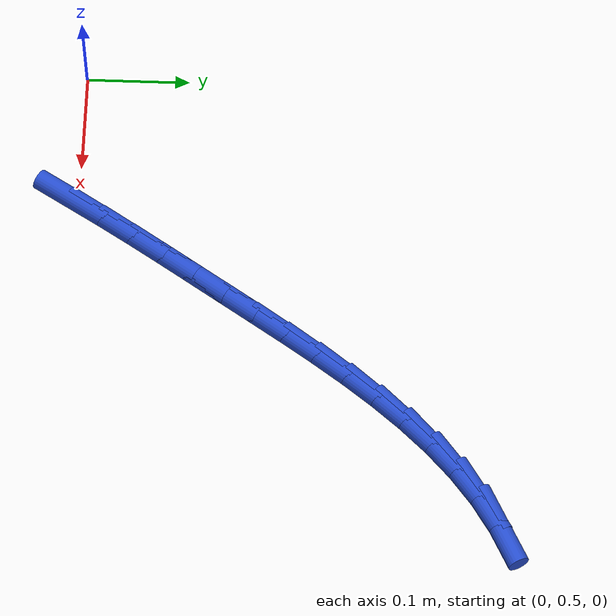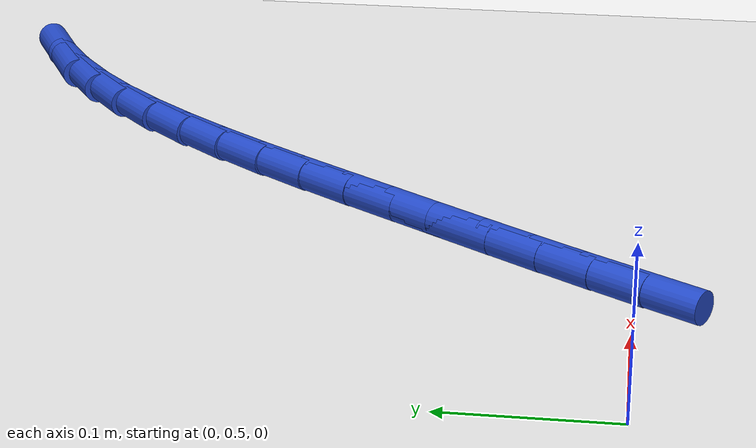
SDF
<sdf version="1.6">
 <world name="default">
  <model name="ground_plane">
   <static>1</static>
   <link name="link">
    <collision name="collision">
     <geometry><plane><normal>0 0 1</normal><size>100 100</size></plane></geometry>
     <surface><friction><ode><mu>100</mu><mu2>50</mu2></ode></friction></surface>
    </collision>
    <visual name="visual">
     <cast_shadows>0</cast_shadows>
     <geometry><plane><normal>0 0 1</normal><size>100 100</size></plane></geometry>
     <material>
      <script><uri>file://media/materials/scripts/gazebo.material</uri><name>Gazebo/WhiteGlow</name></script>
     </material>
    </visual>
   </link>
  </model>
  <model name="line">
   <link name="link_15">
    <pose>0.1393476578614362 0.49506690438544454 0.01 0 1.57 1.015252391539737</pose>
    <collision name="collision">
     <geometry><cylinder><radius>0.01</radius><length>0.08</length></cylinder></geometry>
    </collision>
    <visual name="visual">
     <material>
      <script><name>Gazebo/Blue</name><uri>file://media/materials/scripts/gazebo.material</uri></script>
     </material>
     <geometry><cylinder><radius>0.01</radius><length>0.08</length></cylinder></geometry>
    </visual>
   </link>
   <link name="link_16">
    <pose>0.15774070863731146 0.5246968331244308 0.01 0 1.57 0.9987839765120892</pose>
    <collision name="collision">
     <geometry><cylinder><radius>0.01</radius><length>0.08</length></cylinder></geometry>
    </collision>
    <visual name="visual">
     <material>
      <script><name>Gazebo/Blue</name><uri>file://media/materials/scripts/gazebo.material</uri></script>
     </material>
     <geometry><cylinder><radius>0.01</radius><length>0.08</length></cylinder></geometry>
    </visual>
   </link>
   <link name="link_17">
    <pose>0.17674432737941245 0.5542142055543904 0.01 0 1.57 0.9868868047825836</pose>
    <collision name="collision">
     <geometry><cylinder><radius>0.01</radius><length>0.08</length></cylinder></geometry>
    </collision>
    <visual name="visual">
     <material>
      <script><name>Gazebo/Blue</name><uri>file://media/materials/scripts/gazebo.material</uri></script>
     </material>
     <geometry><cylinder><radius>0.01</radius><length>0.08</length></cylinder></geometry>
    </visual>
   </link>
   <link name="link_18">
    <pose>0.19623283023783752 0.5837078089149095 0.01 0 1.57 0.9794762773099808</pose>
    <collision name="collision">
     <geometry><cylinder><radius>0.01</radius><length>0.08</length></cylinder></geometry>
    </collision>
    <visual name="visual">
     <material>
      <script><name>Gazebo/Blue</name><uri>file://media/materials/scripts/gazebo.material</uri></script>
     </material>
     <geometry><cylinder><radius>0.01</radius><length>0.08</length></cylinder></geometry>
    </visual>
   </link>
   <link name="link_19">
    <pose>0.21608053336268526 0.6132664304455759 0.01 0 1.57 0.9764611975546676</pose>
    <collision name="collision">
     <geometry><cylinder><radius>0.01</radius><length>0.08</length></cylinder></geometry>
    </collision>
    <visual name="visual">
     <material>
      <script><name>Gazebo/Blue</name><uri>file://media/materials/scripts/gazebo.material</uri></script>
     </material>
     <geometry><cylinder><radius>0.01</radius><length>0.08</length></cylinder></geometry>
    </visual>
   </link>
   <link name="link_20">
    <pose>0.2361617529040543 0.6429788573859767 0.01 0 1.57 0.9772397947336325</pose>
    <collision name="collision">
     <geometry><cylinder><radius>0.01</radius><length>0.08</length></cylinder></geometry>
    </collision>
    <visual name="visual">
     <material>
      <script><name>Gazebo/Blue</name><uri>file://media/materials/scripts/gazebo.material</uri></script>
     </material>
     <geometry><cylinder><radius>0.01</radius><length>0.08</length></cylinder></geometry>
    </visual>
   </link>
   <link name="link_21">
    <pose>0.25636192251204426 0.6729175021427375 0.01 0 1.57 0.9742280329714942</pose>
    <collision name="collision">
     <geometry><cylinder><radius>0.01</radius><length>0.08</length></cylinder></geometry>
    </collision>
    <visual name="visual">
     <material>
      <script><name>Gazebo/Blue</name><uri>file://media/materials/scripts/gazebo.material</uri></script>
     </material>
     <geometry><cylinder><radius>0.01</radius><length>0.08</length></cylinder></geometry>
    </visual>
   </link>
   <link name="link_22">
    <pose>0.2767314066519709 0.702911852494736 0.01 0 1.57 0.9616569370458535</pose>
    <collision name="collision">
     <geometry><cylinder><radius>0.01</radius><length>0.08</length></cylinder></geometry>
    </collision>
    <visual name="visual">
     <material>
      <script><name>Gazebo/Blue</name><uri>file://media/materials/scripts/gazebo.material</uri></script>
     </material>
     <geometry><cylinder><radius>0.01</radius><length>0.08</length></cylinder></geometry>
    </visual>
   </link>
   <link name="link_23">
    <pose>0.29744681153537267 0.7326054562607075 0.01 0 1.57 0.9391406261261201</pose>
    <collision name="collision">
     <geometry><cylinder><radius>0.01</radius><length>0.08</length></cylinder></geometry>
    </collision>
    <visual name="visual">
     <material>
      <script><name>Gazebo/Blue</name><uri>file://media/materials/scripts/gazebo.material</uri></script>
     </material>
     <geometry><cylinder><radius>0.01</radius><length>0.08</length></cylinder></geometry>
    </visual>
   </link>
   <link name="link_24">
    <pose>0.3186879493006809 0.7616371392879588 0.01 0 1.57 0.9061544220299828</pose>
    <collision name="collision">
     <geometry><cylinder><radius>0.01</radius><length>0.08</length></cylinder></geometry>
    </collision>
    <visual name="visual">
     <material>
      <script><name>Gazebo/Blue</name><uri>file://media/materials/scripts/gazebo.material</uri></script>
     </material>
     <geometry><cylinder><radius>0.01</radius><length>0.08</length></cylinder></geometry>
    </visual>
   </link>
   <link name="link_25">
    <pose>0.34063463208632705 0.7896457274237966 0.01 0 1.57 0.861927710346363</pose>
    <collision name="collision">
     <geometry><cylinder><radius>0.01</radius><length>0.08</length></cylinder></geometry>
    </collision>
    <visual name="visual">
     <material>
      <script><name>Gazebo/Blue</name><uri>file://media/materials/scripts/gazebo.material</uri></script>
     </material>
     <geometry><cylinder><radius>0.01</radius><length>0.08</length></cylinder></geometry>
    </visual>
   </link>
   <link name="link_26">
    <pose>0.3634666720307429 0.8162700465155283 0.01 0 1.57 0.8055214295372826</pose>
    <collision name="collision">
     <geometry><cylinder><radius>0.01</radius><length>0.08</length></cylinder></geometry>
    </collision>
    <visual name="visual">
     <material>
      <script><name>Gazebo/Blue</name><uri>file://media/materials/scripts/gazebo.material</uri></script>
     </material>
     <geometry><cylinder><radius>0.01</radius><length>0.08</length></cylinder></geometry>
    </visual>
   </link>
   <link name="link_27">
    <pose>0.38736388127235977 0.8411489224104604 0.01 0 1.57 0.7359766976180857</pose>
    <collision name="collision">
     <geometry><cylinder><radius>0.01</radius><length>0.08</length></cylinder></geometry>
    </collision>
    <visual name="visual">
     <material>
      <script><name>Gazebo/Blue</name><uri>file://media/materials/scripts/gazebo.material</uri></script>
     </material>
     <geometry><cylinder><radius>0.01</radius><length>0.08</length></cylinder></geometry>
    </visual>
   </link>
   <link name="link_28">
    <pose>0.41250607194960914 0.8639211809558998 0.01 0 1.57 0.6525743331727882</pose>
    <collision name="collision">
     <geometry><cylinder><radius>0.01</radius><length>0.08</length></cylinder></geometry>
    </collision>
    <visual name="visual">
     <material>
      <script><name>Gazebo/Blue</name><uri>file://media/materials/scripts/gazebo.material</uri></script>
     </material>
     <geometry><cylinder><radius>0.01</radius><length>0.08</length></cylinder></geometry>
    </visual>
   </link>
   <link name="link_29">
    <pose>0.4390730562009228 0.8842256479991529 0.01 0 1.57 0.5557082397295324</pose>
    <collision name="collision">
     <geometry><cylinder><radius>0.01</radius><length>0.08</length></cylinder></geometry>
    </collision>
    <visual name="visual">
     <material>
      <script><name>Gazebo/Blue</name><uri>file://media/materials/scripts/gazebo.material</uri></script>
     </material>
     <geometry><cylinder><radius>0.01</radius><length>0.08</length></cylinder></geometry>
    </visual>
   </link>
   <link name="link_30">
    <pose>0.46723772512531947 0.9017155367052778 0.01 0 1.57 0.45861255509707066</pose>
    <collision name="collision">
     <geometry><cylinder><radius>0.01</radius><length>0.08</length></cylinder></geometry>
    </collision>
    <visual name="visual">
     <material>
      <script><name>Gazebo/Blue</name><uri>file://media/materials/scripts/gazebo.material</uri></script>
     </material>
     <geometry><cylinder><radius>0.01</radius><length>0.08</length></cylinder></geometry>
    </visual>
   </link>
  </model>
 </world>
</sdf>
